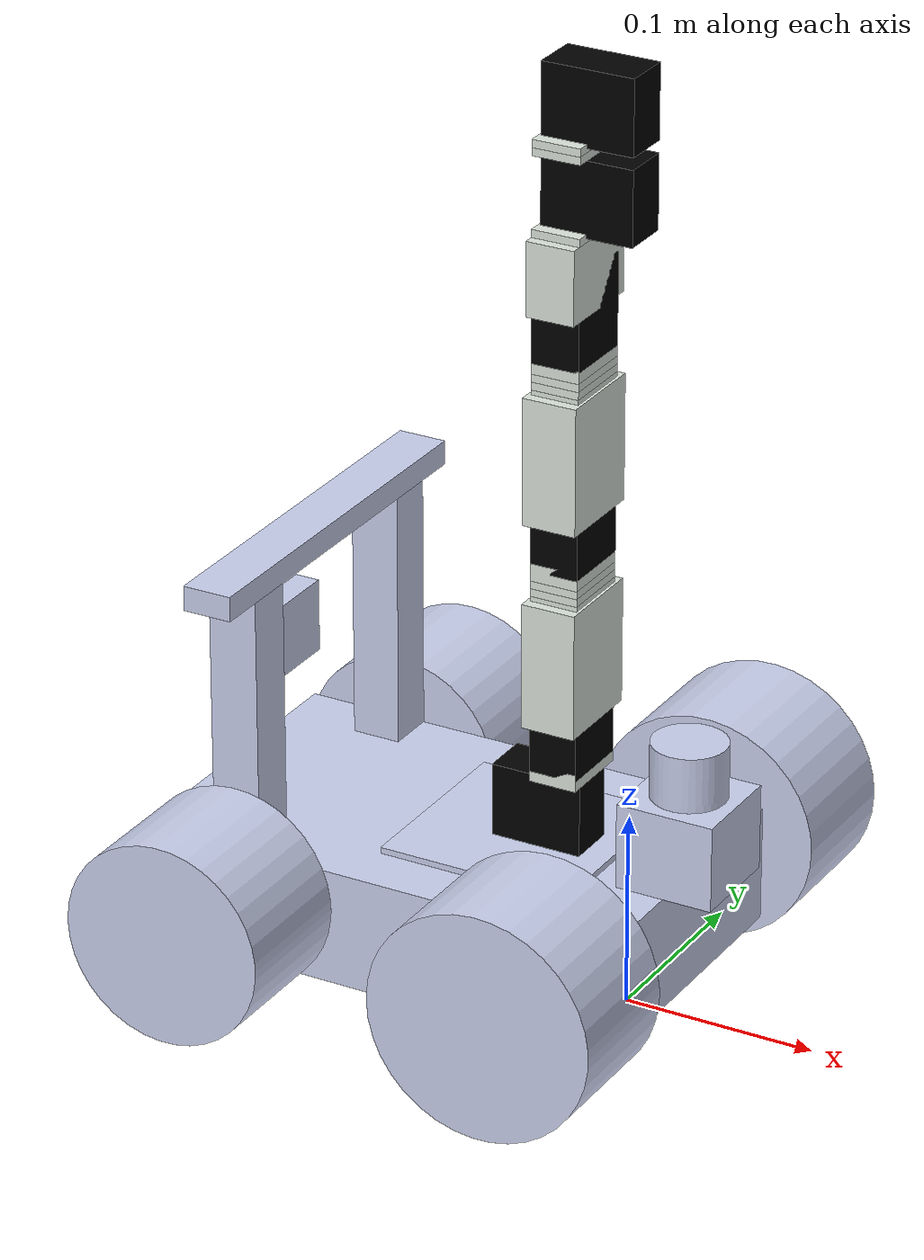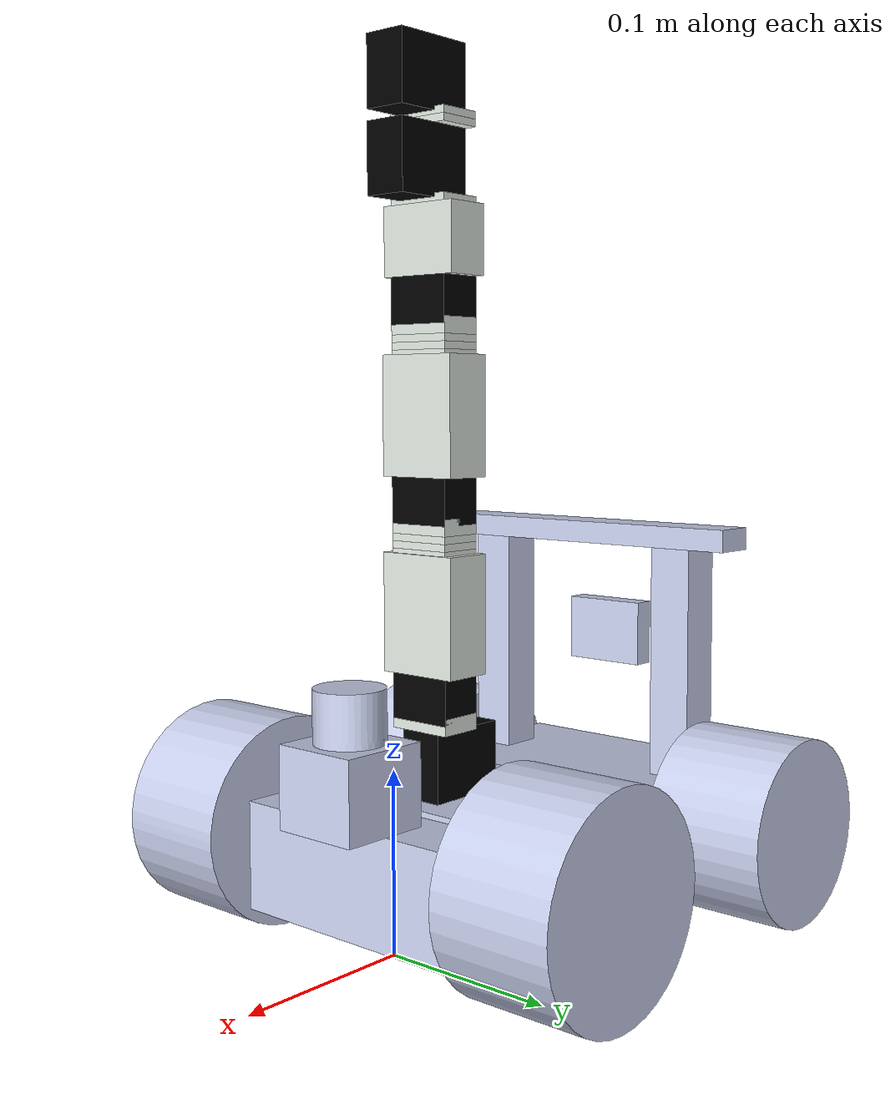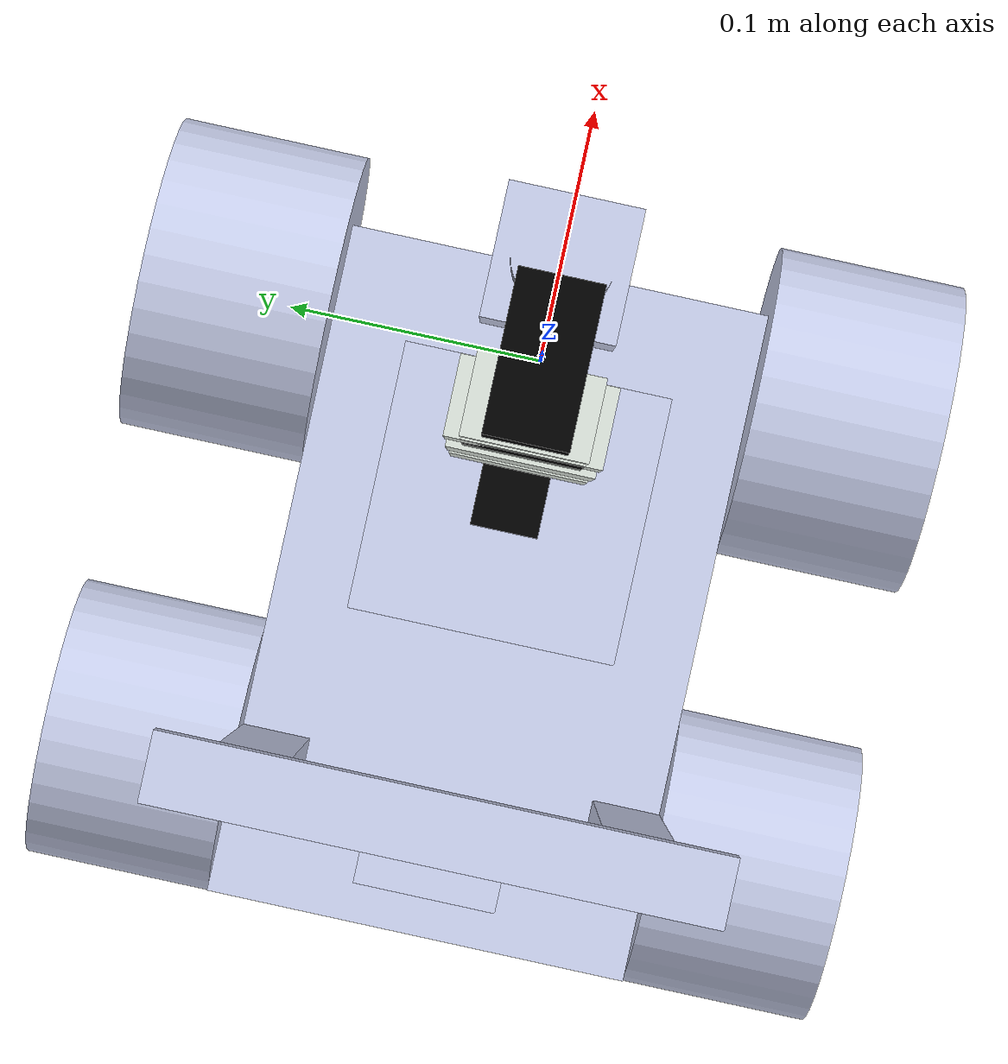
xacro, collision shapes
<?xml version="1.0"?>
<robot name="jr">
  <link name="base_footprint" />
  <joint name="base_footprint_to_base_link_joint" type="fixed">
    <parent link="base_footprint" />
    <child link="base_link" />
    <origin xyz="0 0 0.0587375" rpy="0 0 0"/>
    <axis xyz="0 0 0" />
  </joint>

  <include filename="$(find jr_description)/urdf/jr_description.urdf" />

  <include filename="$(find jr_description)/urdf/arm.xacro" />
  <turtlebot_arm parent="arm_base" color="white" gripper_color="green">
    <origin xyz="0 0 ${AX12_WIDTH/2}"/>
  </turtlebot_arm>
</robot>

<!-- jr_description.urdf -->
<robot
  name="jr_description">
  <link
    name="base_link">
    <inertial>
      <origin
        xyz="-0.10028 8.8908E-18 -0.0063661"
        rpy="0 0 0" />
      <mass
        value="2.6045" />
      <inertia
        ixx="0.0083822"
        ixy="2.649E-18"
        ixz="-0.0011858"
        iyy="0.01652"
        iyz="-6.143E-19"
        izz="0.019903" />
    </inertial>
    <visual>
      <origin
        xyz="0 0 0"
        rpy="0 0 0" />
      <geometry>
        <mesh
          filename="package://jr_description/meshes/base_link.STL" />
      </geometry>
      <material
        name="">
        <color
          rgba="0.79216 0.81961 0.93333 1" />
      </material>
    </visual>
    <collision>
      <origin
        xyz="0 0 0"
        rpy="0 0 0" />
      <geometry>
        <mesh
          filename="package://jr_description/meshes/base_link.STL" />
      </geometry>
    </collision>
  </link>
  <link
    name="arm_base">
    <inertial>
      <origin
        xyz="-0.0254 1.43687145515159E-18 -0.0015875"
        rpy="0 0 0" />
      <mass
        value="0.032774128" />
      <inertia
        ixx="2.82202738684791E-05"
        ixy="4.12183567632782E-38"
        ixz="0"
        iyy="2.82202738684791E-05"
        iyz="0"
        izz="5.63854837879466E-05" />
    </inertial>
    <visual>
      <origin
        xyz="0 0 0"
        rpy="0 0 0" />
      <geometry>
        <mesh
          filename="package://jr_description/meshes/arm_base.STL" />
      </geometry>
      <material
        name="">
        <color
          rgba="0.792156862745098 0.819607843137255 0.933333333333333 1" />
      </material>
    </visual>
    <collision>
      <origin
        xyz="0 0 0"
        rpy="0 0 0" />
      <geometry>
        <mesh
          filename="package://jr_description/meshes/arm_base.STL" />
      </geometry>
    </collision>
  </link>
  <joint
    name="base_link_to_arm_base_joint"
    type="fixed">
    <origin
      xyz="-0.03175 0 0.020574"
      rpy="0 -1.5407E-33 1.5232E-16" />
    <parent
      link="base_link" />
    <child
      link="arm_base" />
    <axis
      xyz="0 0 0" />
  </joint>
  <link
    name="kinect_base">
    <inertial>
      <origin
        xyz="0 -2.02645682143E-17 0"
        rpy="0 0 0" />
      <mass
        value="0.0655482560000002" />
      <inertia
        ixx="0.000226422958335974"
        ixy="-5.87174898103748E-21"
        ixz="-9.30344764534043E-22"
        iyy="4.40511592093335E-06"
        iyz="-5.97297429508228E-21"
        izz="0.000229066027888534" />
    </inertial>
    <visual>
      <origin
        xyz="0 0 0"
        rpy="0 0 0" />
      <geometry>
        <mesh
          filename="package://jr_description/meshes/kinect_base.STL" />
      </geometry>
      <material
        name="">
        <color
          rgba="0.792156862745098 0.819607843137255 0.933333333333333 1" />
      </material>
    </visual>
    <collision>
      <origin
        xyz="0 0 0"
        rpy="0 0 0" />
      <geometry>
        <mesh
          filename="package://jr_description/meshes/kinect_base.STL" />
      </geometry>
    </collision>
  </link>
  <joint
    name="base_link_to_kinect_base_joint"
    type="fixed">
    <origin
      xyz="-0.17145 0 0.1571"
      rpy="1.6653E-16 -1.1584E-16 1.0229E-16" />
    <parent
      link="base_link" />
    <child
      link="kinect_base" />
    <axis
      xyz="0 0 0" />
  </joint>
  <link
    name="front_left_wheel">
    <inertial>
      <origin
        xyz="0 0 -1.73472347597681E-18"
        rpy="0 0 0" />
      <mass
        value="0.757089458454383" />
      <inertia
        ixx="0.000960828806967541"
        ixy="-4.65183370141717E-20"
        ixz="-7.52316384526264E-36"
        iyy="0.00130601486354979"
        iyz="2.1696133823104E-36"
        izz="0.000960828806967541" />
    </inertial>
    <visual>
      <origin
        xyz="0 0 0"
        rpy="0 0 0" />
      <geometry>
        <mesh
          filename="package://jr_description/meshes/front_left_wheel.STL" />
      </geometry>
      <material
        name="">
        <color
          rgba="0.792156862745098 0.819607843137255 0.933333333333333 1" />
      </material>
    </visual>
    <collision>
      <origin
        xyz="0 0 0"
        rpy="0 0 0" />
      <geometry>
        <mesh
          filename="package://jr_description/meshes/front_left_wheel.STL" />
      </geometry>
    </collision>
  </link>
  <joint
    name="base_link_to_front_left_wheel_joint"
    type="continuous">
    <origin
      xyz="0 0.1143 0"
      rpy="-1.6185E-33 4.5241E-18 2.4652E-32" />
    <parent
      link="base_link" />
    <child
      link="front_left_wheel" />
    <axis
      xyz="0 1 0" />
  </joint>
  <link
    name="front_right_wheel">
    <inertial>
      <origin
        xyz="0 -1.38777878078145E-17 -1.73472347597681E-18"
        rpy="0 0 0" />
      <mass
        value="0.757089458454383" />
      <inertia
        ixx="0.000960828806967541"
        ixy="-4.38718486817743E-21"
        ixz="-4.56924239365896E-37"
        iyy="0.00130601486354979"
        iyz="8.85585047159997E-22"
        izz="0.000960828806967541" />
    </inertial>
    <visual>
      <origin
        xyz="0 0 0"
        rpy="0 0 0" />
      <geometry>
        <mesh
          filename="package://jr_description/meshes/front_right_wheel.STL" />
      </geometry>
      <material
        name="">
        <color
          rgba="0.792156862745098 0.819607843137255 0.933333333333333 1" />
      </material>
    </visual>
    <collision>
      <origin
        xyz="0 0 0"
        rpy="0 0 0" />
      <geometry>
        <mesh
          filename="package://jr_description/meshes/front_right_wheel.STL" />
      </geometry>
    </collision>
  </link>
  <joint
    name="base_link_to_front_right_wheel_joint"
    type="continuous">
    <origin
      xyz="0 -0.1143 0"
      rpy="-4.79490768851316E-18 -2.41087784164084E-33 -2.91484050545616E-17" />
    <parent
      link="base_link" />
    <child
      link="front_right_wheel" />
    <axis
      xyz="0 1 0" />
  </joint>
  <link
    name="rear_left_wheel">
    <inertial>
      <origin
        xyz="1.3878E-17 -2.7756E-17 0"
        rpy="0 0 0" />
      <mass
        value="0.60224" />
      <inertia
        ixx="0.00065807"
        ixy="-4.1642E-20"
        ixz="-2.4074E-35"
        iyy="0.00082641"
        iyz="-8.8453E-21"
        izz="0.00065807" />
    </inertial>
    <visual>
      <origin
        xyz="0 0 0"
        rpy="0 0 0" />
      <geometry>
        <mesh
          filename="package://jr_description/meshes/rear_left_wheel.STL" />
      </geometry>
      <material
        name="">
        <color
          rgba="0.79216 0.81961 0.93333 1" />
      </material>
    </visual>
    <collision>
      <origin
        xyz="0 0 0"
        rpy="0 0 0" />
      <geometry>
        <mesh
          filename="package://jr_description/meshes/rear_left_wheel.STL" />
      </geometry>
    </collision>
  </link>
  <joint
    name="base_link_to_rear_left_wheel_joint"
    type="continuous">
    <origin
      xyz="-0.17145 0.1143 -0.00323850000000001"
      rpy="-5.25433558435984E-17 -1.07552855510562E-16 0" />
    <parent
      link="base_link" />
    <child
      link="rear_left_wheel" />
    <axis
      xyz="0 1 0" />
  </joint>
  <link
    name="rear_right_wheel">
    <inertial>
      <origin
        xyz="0 2.7756E-17 -1.7347E-18"
        rpy="0 0 0" />
      <mass
        value="0.60224" />
      <inertia
        ixx="0.00065807"
        ixy="-3.0008E-20"
        ixz="-2.4074E-35"
        iyy="0.00082641"
        iyz="-4.7922E-21"
        izz="0.00065807" />
    </inertial>
    <visual>
      <origin
        xyz="0 0 0"
        rpy="0 0 0" />
      <geometry>
        <mesh
          filename="package://jr_description/meshes/rear_right_wheel.STL" />
      </geometry>
      <material
        name="">
        <color
          rgba="0.79216 0.81961 0.93333 1" />
      </material>
    </visual>
    <collision>
      <origin
        xyz="0 0 0"
        rpy="0 0 0" />
      <geometry>
        <mesh
          filename="package://jr_description/meshes/rear_right_wheel.STL" />
      </geometry>
    </collision>
  </link>
  <joint
    name="base_link_to_rear_right_wheel_joint"
    type="continuous">
    <origin
      xyz="-0.17145 -0.1143 -0.00323849999999998"
      rpy="-2.84666251601602E-17 -1.66533453693773E-16 0" />
    <parent
      link="base_link" />
    <child
      link="rear_right_wheel" />
    <axis
      xyz="0 1 0" />
  </joint>
  <link
    name="laser">
    <inertial>
      <origin
        xyz="0 -1.0618E-17 -0.030024"
        rpy="0 0 0" />
      <mass
        value="0.14729" />
      <inertia
        ixx="8.2553E-05"
        ixy="5.2628E-21"
        ixz="-1.2749E-21"
        iyy="8.2553E-05"
        iyz="1.0852E-20"
        izz="5.5249E-05" />
    </inertial>
    <visual>
      <origin
        xyz="0 0 0"
        rpy="0 0 0" />
      <geometry>
        <mesh
          filename="package://jr_description/meshes/laser.STL" />
      </geometry>
      <material
        name="">
        <color
          rgba="0.79216 0.81961 0.93333 1" />
      </material>
    </visual>
    <collision>
      <origin
        xyz="0 0 0"
        rpy="0 0 0" />
      <geometry>
        <mesh
          filename="package://jr_description/meshes/laser.STL" />
      </geometry>
    </collision>
  </link>
  <joint
    name="base_link_to_laser_joint"
    type="fixed">
    <origin
      xyz="0.03175 0 0.077724"
      rpy="0 -1.5407E-33 1.5232E-16" />
    <parent
      link="base_link" />
    <child
      link="laser" />
    <axis
      xyz="0 0 0" />
  </joint>
  <link
    name="imu">
    <inertial>
      <origin
        xyz="-1.3878E-17 -1.2982E-18 -1.3878E-17"
        rpy="0 0 0" />
      <mass
        value="0.024581" />
      <inertia
        ixx="8.2596E-06"
        ixy="8.4979E-23"
        ixz="3.6549E-23"
        iyy="3.3038E-06"
        iyz="-6.8956E-22"
        izz="5.6165E-06" />
    </inertial>
    <visual>
      <origin
        xyz="0 0 0"
        rpy="0 0 0" />
      <geometry>
        <mesh
          filename="package://jr_description/meshes/imu.STL" />
      </geometry>
      <material
        name="">
        <color
          rgba="0.79216 0.81961 0.93333 1" />
      </material>
    </visual>
    <collision>
      <origin
        xyz="0 0 0"
        rpy="0 0 0" />
      <geometry>
        <mesh
          filename="package://jr_description/meshes/imu.STL" />
      </geometry>
    </collision>
  </link>
  <joint
    name="base_link_to_imu_joint"
    type="fixed">
    <origin
      xyz="-0.19304 0 0.093599"
      rpy="0 -1.5407E-33 1.5232E-16" />
    <parent
      link="base_link" />
    <child
      link="imu" />
    <axis
      xyz="0 0 0" />
  </joint>
</robot>

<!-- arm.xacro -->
<robot>
  <include filename="$(find jr_description)/urdf/arm_hardware.xacro" />

  <material name="white">
    <color rgba="0.87 0.90 0.87 1.0"/>
  </material>
  <material name="black">
    <color rgba="0.0 0.0 0.0 1.0"/>
  </material>
  <material name="green">
    <color rgba="0.22 0.32 0.14 1.0"/>
  </material>

  <macro name="turtlebot_arm" params="parent color gripper_color *origin">
    <link name="arm_base_link" />
    <joint name="arm_base_joint" type="fixed">
      <insert_block name="origin" />
      <parent link="${parent}"/>
      <child link="arm_base_link" />
    </joint>

    <!-- shoulder pan joint -->
    <dynamixel_AX12_fixed parent="arm_base_link" name="arm_shoulder_pan_servo">
      <origin xyz="0 0 0" rpy="${M_PI/2} 0 ${M_PI/2}"/>
    </dynamixel_AX12_fixed>
    <bioloid_F3_revolute parent="arm_shoulder_pan_servo_link" name="arm_shoulder_pan" color="${color}" vlimit="1.571" llimit="-2.617" ulimit="2.617">
      <origin xyz="0 ${AX12_WIDTH/2} 0" rpy="${-M_PI/2} ${M_PI/2} ${M_PI}" />
    </bioloid_F3_revolute>

    <!-- shoulder lift joint -->
    <dynamixel_AX12_fixed parent="arm_shoulder_pan_link" name="arm_shoulder_lift_servo">
      <origin xyz="0 0 ${-AX12_HEIGHT-F10_HEIGHT+0.001}" rpy="0 ${M_PI} 0" />
    </dynamixel_AX12_fixed>
    <bioloid_F4_revolute parent="arm_shoulder_lift_servo_link" name="arm_shoulder_lift" color="${color}" vlimit="1.571" llimit="-2.617" ulimit="2.617">
      <origin xyz="0 0 0" rpy="0 0 0" />
    </bioloid_F4_revolute>
    <bioloid_F10_fixed parent="arm_shoulder_lift_link" name="arm_shoulder_F10_0" color="${color}">
      <origin xyz="0 0 ${F4_HEIGHT+F10_HEIGHT/2}" rpy="0 0 0" />
    </bioloid_F10_fixed>
    <bioloid_F10_fixed parent="arm_shoulder_F10_0_link" name="arm_shoulder_F10_1" color="${color}">
      <origin xyz="0 0 ${F10_HEIGHT}" rpy="0 0 0" />
    </bioloid_F10_fixed>
    <bioloid_F10_fixed parent="arm_shoulder_F10_1_link" name="arm_shoulder_F10_2" color="${color}">
      <origin xyz="0 0 ${F10_HEIGHT}" rpy="0 0 0" />
    </bioloid_F10_fixed>
    <bioloid_F3_fixed parent="arm_shoulder_F10_2_link" name="arm_shoulder_F3_0" color="${color}">
      <origin xyz="0 0 ${F10_HEIGHT/2}" rpy="0 ${M_PI} 0" />
    </bioloid_F3_fixed>

    <!-- elbow joint -->
    <dynamixel_AX12_fixed parent="arm_shoulder_F3_0_link" name="arm_elbow_flex_servo">
      <origin xyz="0 0 ${-AX12_HEIGHT-F10_HEIGHT+0.001}" rpy="0 ${M_PI} 0"/>
    </dynamixel_AX12_fixed>
    <bioloid_F4_revolute parent="arm_elbow_flex_servo_link" name="arm_elbow_flex" color="${color}" vlimit="1.571" llimit="-2.617" ulimit="2.617">
      <origin xyz="0 0 0" rpy="0 0 0" />
    </bioloid_F4_revolute>
    <bioloid_F10_fixed parent="arm_elbow_flex_link" name="arm_elbow_F10_0" color="${color}">
      <origin xyz="0 0 ${F4_HEIGHT+F10_HEIGHT/2}" rpy="0 0 0" />
    </bioloid_F10_fixed>
    <bioloid_F10_fixed parent="arm_elbow_F10_0_link" name="arm_elbow_F10_1" color="${color}">
      <origin xyz="0 0 ${F10_HEIGHT}" rpy="0 0 0" />
    </bioloid_F10_fixed>
    <bioloid_F10_fixed parent="arm_elbow_F10_1_link" name="arm_elbow_F10_2" color="${color}">
      <origin xyz="0 0 ${F10_HEIGHT}" rpy="0 0 0" />
    </bioloid_F10_fixed>
    <bioloid_F3_fixed parent="arm_elbow_F10_2_link" name="arm_elbow_F3_0" color="${color}">
      <origin xyz="0 0 ${F10_HEIGHT/2}" rpy="0 ${M_PI} 0" />
    </bioloid_F3_fixed>

    <!-- wrist flex joint -->
    <dynamixel_AX12_fixed parent="arm_elbow_F3_0_link" name="arm_wrist_flex_servo">
      <origin xyz="0 0 ${-AX12_HEIGHT-F10_HEIGHT+0.001}" rpy="0 ${M_PI} 0"/>
    </dynamixel_AX12_fixed>
    <bioloid_F2_revolute parent="arm_wrist_flex_servo_link" name="arm_wrist_flex" color="${color}" vlimit="1.571" llimit="-1.745" ulimit="1.745">
      <origin xyz="0 0 0" rpy="0 0 0" />
    </bioloid_F2_revolute>
    <bioloid_F10_fixed parent="arm_wrist_flex_link" name="arm_wrist_flex_F10_0" color="${color}">
      <origin xyz="0 0 ${F2_HEIGHT+F10_HEIGHT/2}" rpy="0 0 0" />
    </bioloid_F10_fixed>

    <!-- wrist roll joint -->
    <dynamixel_AX12_fixed parent="arm_wrist_flex_F10_0_link" name="arm_wrist_roll_servo">
      <origin xyz="0 0 ${AX12_WIDTH/2}" rpy="${M_PI/2} 0 -${M_PI/2}"/>
    </dynamixel_AX12_fixed>
    <bioloid_F10_revolute parent="arm_wrist_roll_servo_link" name="arm_wrist_roll" color="${color}" vlimit="1.571" llimit="-2.617" ulimit="2.617">
      <origin xyz="0 ${AX12_WIDTH/2+F10_HEIGHT/2} 0" rpy="0 -${M_PI/2} ${M_PI/2}" />
    </bioloid_F10_revolute>
    <bioloid_F10_fixed parent="arm_wrist_roll_link" name="arm_wrist_roll_F10_0" color="${color}">
      <origin xyz="0 0 -${F10_HEIGHT}" rpy="0 0 0" />
    </bioloid_F10_fixed>

    <!-- gripper joint -->
    <dynamixel_AX12_fixed parent="arm_wrist_roll_F10_0_link" name="gripper_servo">
      <origin xyz="0 0 -${AX12_WIDTH/2}" rpy="${M_PI/2} ${M_PI} ${M_PI/2}"/>
    </dynamixel_AX12_fixed>

    <!-- finger 1 -->

    <!-- finger 2 -->

  </macro>

</robot>

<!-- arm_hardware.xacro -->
<robot>
  <property name="M_PI" value="3.14159"/>
  <property name="M_SCALE" value="0.001"/>
  <property name="F10_HEIGHT" value="0.004"/>
  <property name="F4_HEIGHT" value="0.0525"/>
  <property name="F3_HEIGHT" value="0.009"/>
  <property name="AX12_HEIGHT" value="0.0385"/>
  <property name="AX12_WIDTH" value="0.038"/>
  <property name="F2_HEIGHT" value="0.0265"/>

  <macro name="bioloid_F10_fixed" params="parent name color *origin">
    <joint name="${name}_joint" type="fixed">
      <insert_block name="origin" />
      <parent link="${parent}"/>
      <child link="${name}_link" />
    </joint>

    <link name="${name}_link">
      <inertial>
        <mass value="0.00001" />
        <origin xyz="0 0 0" />
        <inertia ixx="1.0" ixy="0.0" ixz="0.0"
          iyy="1.0" iyz="0.0"
          izz="1.0" />
      </inertial>

      <visual>
        <origin xyz=" 0 0 0 " rpy="0 0 0" />
        <geometry>
          <mesh filename="package://turtlebot_arm_description/meshes/F10.stl" scale="${M_SCALE} ${M_SCALE} ${M_SCALE}"/>
        </geometry>
        <material name="${color}"/>
      </visual>

      <collision>
        <origin xyz="0.0 0.0 0.0" rpy="0 0 0" />
        <geometry>
          <box size="0.025 0.038 0.004"/>
        </geometry>
      </collision>
    </link>
  </macro>

  <macro name="finger_fixed" params="parent name color *origin">
    <joint name="${name}_joint" type="fixed">
      <insert_block name="origin" />
      <parent link="${parent}"/>
      <child link="${name}_link" />
    </joint>

    <link name="${name}_link">
      <inertial>
        <mass value="0.00001" />
        <origin xyz="0 0 0" />
        <inertia ixx="1.0" ixy="0.0" ixz="0.0"
          iyy="1.0" iyz="0.0"
          izz="1.0" />
      </inertial>

      <visual>
        <origin xyz=" 0 0 0 " rpy="0 0 0" />
        <geometry>
          <mesh filename="package://turtlebot_arm_description/meshes/finger.stl" scale="${M_SCALE} ${M_SCALE} ${M_SCALE}"/>
        </geometry>
        <material name="${color}"/>
      </visual>

      <collision>
        <origin xyz="0.02645 0.0 -0.00655" rpy="0 0 0" />
        <geometry>
          <box size="0.0783 0.03801 0.0193"/>
        </geometry>
      </collision>
    </link>
  </macro>

  <macro name="bioloid_F3_fixed" params="parent name color *origin">
    <joint name="${name}_joint" type="fixed">
      <insert_block name="origin" />
      <parent link="${parent}"/>
      <child link="${name}_link" />
    </joint>

    <link name="${name}_link">
      <inertial>
        <mass value="0.00001" />
        <origin xyz="0 0 0" />
        <inertia ixx="1.0" ixy="0.0" ixz="0.0"
          iyy="1.0" iyz="0.0"
          izz="1.0" />
      </inertial>

      <visual>
        <origin xyz=" 0 0 0 " rpy="0 0 0" />
        <geometry>
          <mesh filename="package://turtlebot_arm_description/meshes/F3.stl" scale="${M_SCALE} ${M_SCALE} ${M_SCALE}"/>
        </geometry>
        <material name="${color}"/>
      </visual>

      <collision>
        <origin xyz="0.0 0.0 -0.0045" rpy="0 0 0" />
        <geometry>
          <box size="0.025 0.038 0.009"/>
        </geometry>
      </collision>
    </link>
  </macro>

  <macro name="dynamixel_AX12_fixed" params="parent name *origin">
    <joint name="${name}_joint" type="fixed">
      <insert_block name="origin" />
      <parent link="${parent}"/>
      <child link="${name}_link" />
    </joint>

    <link name="${name}_link">
      <inertial>
        <mass value="0.00001" />
        <origin xyz="0 0 0" />
        <inertia ixx="1.0" ixy="0.0" ixz="0.0"
          iyy="1.0" iyz="0.0"
          izz="1.0" />
      </inertial>

      <visual>
        <origin xyz=" 0 0 0 " rpy="0 0 0" />
        <geometry>
          <mesh filename="package://turtlebot_arm_description/meshes/ax12_box.stl" scale="${M_SCALE} ${M_SCALE} ${M_SCALE}"/>
        </geometry>
        <material name="black"/>
      </visual>

      <collision>
        <origin xyz="0.0 0.0 -0.01241" rpy="0 0 0" />
        <geometry>
          <box size="0.025 0.038 0.04762"/>
        </geometry>
      </collision>
    </link>
  </macro>

  <macro name="bioloid_F3_revolute" params="parent name color llimit ulimit vlimit *origin">
    <joint name="${name}_joint" type="revolute">
      <insert_block name="origin" />
      <axis xyz="0 0 -1"/>
      <limit effort="30" velocity="${vlimit}" lower="${llimit}" upper="${ulimit}" />
      <parent link="${parent}"/>
      <child link="${name}_link" />
    </joint>

    <link name="${name}_link">
      <inertial>
        <mass value="0.00001" />
        <origin xyz="0 0 0" />
        <inertia ixx="1.0" ixy="0.0" ixz="0.0"
          iyy="1.0" iyz="0.0"
          izz="1.0" />
      </inertial>

      <visual>
        <origin xyz=" 0 0 0 " rpy="0 0 0" />
        <geometry>
          <mesh filename="package://turtlebot_arm_description/meshes/F3.stl" scale="${M_SCALE} ${M_SCALE} ${M_SCALE}"/>
        </geometry>
        <material name="${color}"/>
      </visual>

      <collision>
        <origin xyz="0.0 0.0 -0.0045" rpy="0 0 0" />
        <geometry>
          <box size="0.025 0.038 0.009"/>
        </geometry>
      </collision>
    </link>
  </macro>

  <macro name="bioloid_F2_revolute" params="parent name color llimit ulimit vlimit *origin">
    <joint name="${name}_joint" type="revolute">
      <insert_block name="origin" />
      <axis xyz="0 1 0"/>
      <limit effort="30" velocity="${vlimit}" lower="${llimit}" upper="${ulimit}" />
      <parent link="${parent}"/>
      <child link="${name}_link" />
    </joint>

    <link name="${name}_link">
      <inertial>
        <mass value="0.00001" />
        <origin xyz="0 0 0" />
        <inertia ixx="1.0" ixy="0.0" ixz="0.0"
          iyy="1.0" iyz="0.0"
          izz="1.0" />
      </inertial>

      <visual>
        <origin xyz=" 0 0 0 " rpy="0 0 0" />
        <geometry>
          <mesh filename="package://turtlebot_arm_description/meshes/F2.stl" scale="${M_SCALE} ${M_SCALE} ${M_SCALE}"/>
        </geometry>
        <material name="${color}"/>
      </visual>

      <collision>
        <origin xyz="0.0 0.0 0.00775" rpy="0 0 0" />
        <geometry>
          <box size="0.025 0.0485 0.0375"/>
        </geometry>
      </collision>
    </link>
  </macro>

  <macro name="bioloid_F4_revolute" params="parent name color llimit ulimit vlimit *origin">
    <joint name="${name}_joint" type="revolute">
      <insert_block name="origin" />
      <axis xyz="0 1 0"/>
      <limit effort="30" velocity="${vlimit}" lower="${llimit}" upper="${ulimit}" />
      <parent link="${parent}"/>
      <child link="${name}_link" />
    </joint>

    <link name="${name}_link">
      <inertial>
        <mass value="0.00001" />
        <origin xyz="0 0 0" />
        <inertia ixx="1.0" ixy="0.0" ixz="0.0"
          iyy="1.0" iyz="0.0"
          izz="1.0" />
      </inertial>

      <visual>
        <origin xyz=" 0 0 0 " rpy="0 0 0" />
        <geometry>
          <mesh filename="package://turtlebot_arm_description/meshes/F4.stl" scale="${M_SCALE} ${M_SCALE} ${M_SCALE}"/>
        </geometry>
        <material name="${color}"/>
      </visual>

      <collision>
        <origin xyz="0.0 0.0 0.0215" rpy="0 0 0" />
        <geometry>
          <box size="0.028 0.0485 0.065"/>
        </geometry>
      </collision>
    </link>
  </macro>

  <macro name="bioloid_F10_revolute" params="parent name color llimit ulimit vlimit *origin">
    <joint name="${name}_joint" type="revolute">
      <insert_block name="origin" />
      <axis xyz="0 0 -1"/>
      <limit effort="30" velocity="${vlimit}" lower="${llimit}" upper="${ulimit}" />
      <parent link="${parent}"/>
      <child link="${name}_link" />
    </joint>

    <link name="${name}_link">
      <inertial>
        <mass value="0.00001" />
        <origin xyz="0 0 0" />
        <inertia ixx="1.0" ixy="0.0" ixz="0.0"
          iyy="1.0" iyz="0.0"
          izz="1.0" />
      </inertial>

      <visual>
        <origin xyz=" 0 0 0 " rpy="0 0 0" />
        <geometry>
          <mesh filename="package://turtlebot_arm_description/meshes/F10.stl" scale="${M_SCALE} ${M_SCALE} ${M_SCALE}"/>
        </geometry>
        <material name="${color}"/>
      </visual>

      <collision>
        <origin xyz="0.0 0.0 0.0" rpy="0 0 0" />
        <geometry>
          <box size="0.025 0.038 0.004"/>
        </geometry>
      </collision>
    </link>
  </macro>

</robot>
